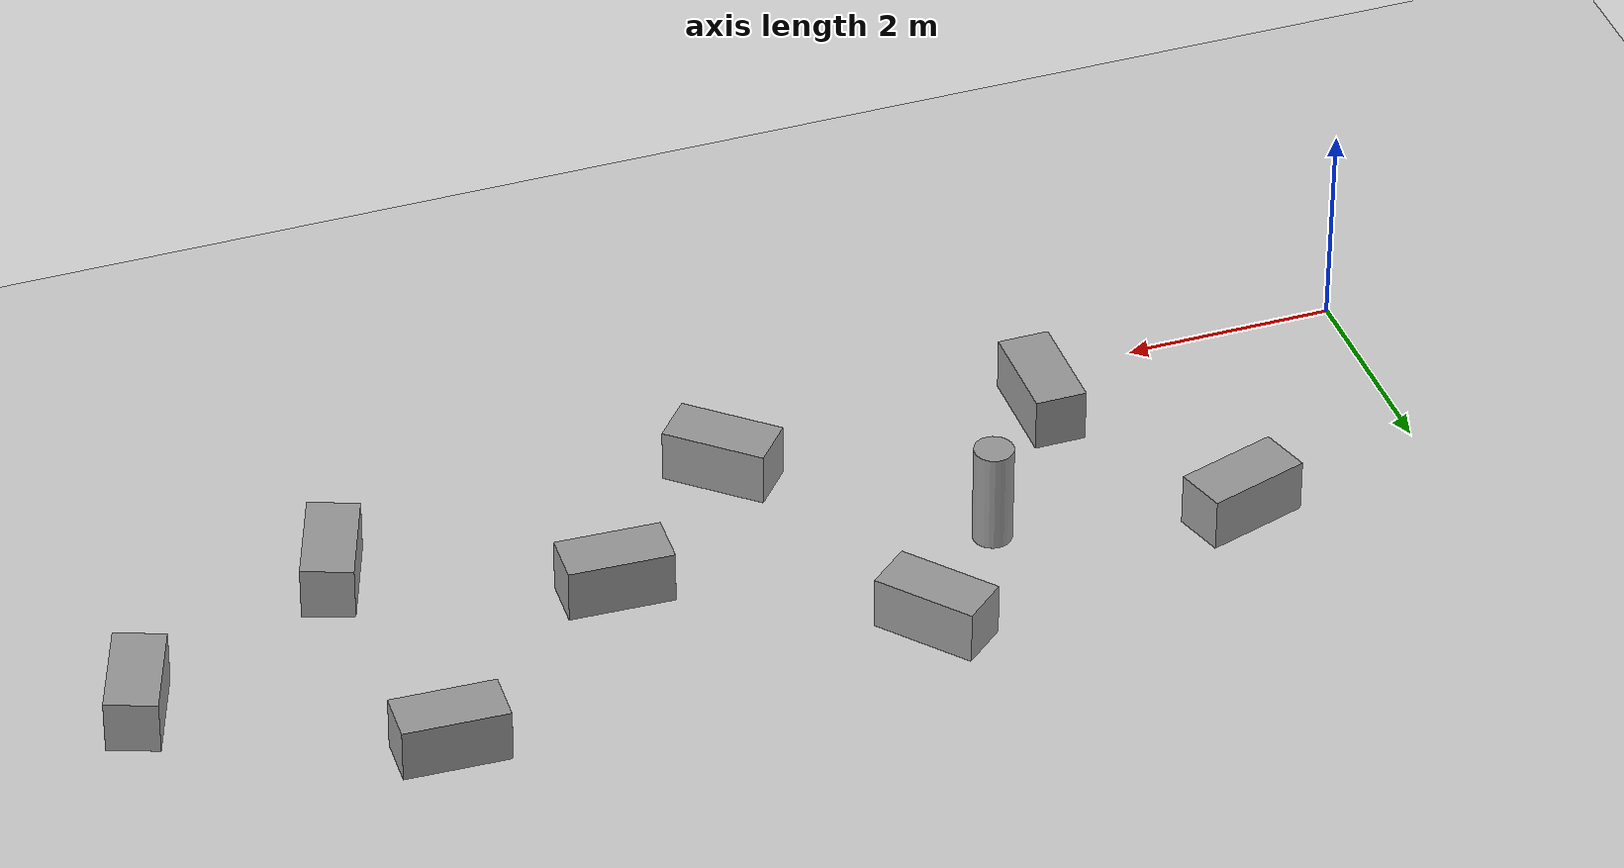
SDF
<sdf version="1.6">
 <world name="default">
  <light name="sun" type="directional">
   <pose>0 0 10 0 -0 0</pose>
   <diffuse>0.8 0.8 0.8 1</diffuse>
   <specular>0.2 0.2 0.2 1</specular>
   <attenuation>
    <range>1000</range>
    <constant>0.9</constant>
    <linear>0.01</linear>
    <quadratic>0.001</quadratic>
   </attenuation>
   <direction>-0.5 0.1 -0.9</direction>
  </light>
  <model name="ground_plane">
   <static>1</static>
   <link name="link">
    <collision name="collision">
     <geometry><plane><normal>0 0 1</normal><size>100 100</size></plane></geometry>
     <surface><friction><ode><mu>100</mu><mu2>50</mu2></ode></friction></surface>
    </collision>
    <visual name="visual">
     <cast_shadows>0</cast_shadows>
     <geometry><plane><normal>0 0 1</normal><size>100 100</size></plane></geometry>
     <material>
      <script><uri>file://media/materials/scripts/gazebo.material</uri><name>Gazebo/Grey</name></script>
     </material>
    </visual>
   </link>
  </model>
  <gravity>0 0 -9.8</gravity>
  <magnetic_field>6e-06 2.3e-05 -4.2e-05</magnetic_field>
  <atmosphere type="adiabatic"/>
  <physics name="default_physics" default="0" type="ode">
   <max_step_size>0.001</max_step_size>
   <real_time_factor>1</real_time_factor>
   <real_time_update_rate>1000</real_time_update_rate>
  </physics>
  <scene><ambient>0.4 0.4 0.4 1</ambient><background>0.7 0.7 0.7 1</background><shadows>1</shadows></scene>
  <spherical_coordinates>
   <surface_model>EARTH_WGS84</surface_model>
   <latitude_deg>0</latitude_deg>
   <longitude_deg>0</longitude_deg>
   <elevation>0</elevation>
   <heading_deg>0</heading_deg>
  </spherical_coordinates>
  <model name="unit_box">
   <pose>3.10766 0.564853 0.25945 0 -0 0</pose>
   <link name="link">
    <inertial>
     <mass>1</mass>
     <inertia>
      <ixx>0.166667</ixx>
      <ixy>0</ixy>
      <ixz>0</ixz>
      <iyy>0.166667</iyy>
      <iyz>0</iyz>
      <izz>0.166667</izz>
     </inertia>
    </inertial>
    <collision name="collision"><geometry><box><size>0.491146 1 0.518899</size></box></geometry></collision>
    <visual name="visual">
     <geometry><box><size>0.491146 1 0.518899</size></box></geometry>
     <material>
      <script><name>Gazebo/Grey</name><uri>file://media/materials/scripts/gazebo.material</uri></script>
     </material>
    </visual>
   </link>
  </model>
  <model name="unit_box_clone">
   <pose>1.92866 2.60505 0.25945 0 0 -1.26885</pose>
   <link name="link">
    <inertial>
     <mass>1</mass>
     <inertia>
      <ixx>0.166667</ixx>
      <ixy>0</ixy>
      <ixz>0</ixz>
      <iyy>0.166667</iyy>
      <iyz>0</iyz>
      <izz>0.166667</izz>
     </inertia>
    </inertial>
    <collision name="collision"><geometry><box><size>0.491146 1 0.5189</size></box></geometry></collision>
    <visual name="visual">
     <geometry><box><size>0.491146 1 0.5189</size></box></geometry>
     <material>
      <script><name>Gazebo/Grey</name><uri>file://media/materials/scripts/gazebo.material</uri></script>
     </material>
    </visual>
   </link>
  </model>
  <model name="unit_box_clone_0">
   <pose>5.12697 3.23307 0.25945 0 -0 0.702334</pose>
   <link name="link">
    <inertial>
     <mass>1</mass>
     <inertia>
      <ixx>0.166667</ixx>
      <ixy>0</ixy>
      <ixz>0</ixz>
      <iyy>0.166667</iyy>
      <iyz>0</iyz>
      <izz>0.166667</izz>
     </inertia>
    </inertial>
    <collision name="collision"><geometry><box><size>0.491146 1 0.5189</size></box></geometry></collision>
    <visual name="visual">
     <geometry><box><size>0.491146 1 0.5189</size></box></geometry>
     <material>
      <script><name>Gazebo/Grey</name><uri>file://media/materials/scripts/gazebo.material</uri></script>
     </material>
    </visual>
   </link>
  </model>
  <model name="unit_box_clone_0_clone">
   <pose>6.21204 0.496408 0.25945 0 -0 0.860732</pose>
   <link name="link">
    <inertial>
     <mass>1</mass>
     <inertia>
      <ixx>0.166667</ixx>
      <ixy>0</ixy>
      <ixz>0</ixz>
      <iyy>0.166667</iyy>
      <iyz>0</iyz>
      <izz>0.166667</izz>
     </inertia>
    </inertial>
    <collision name="collision"><geometry><box><size>0.491146 1 0.5189</size></box></geometry></collision>
    <visual name="visual">
     <geometry><box><size>0.491146 1 0.5189</size></box></geometry>
     <material>
      <script><name>Gazebo/Grey</name><uri>file://media/materials/scripts/gazebo.material</uri></script>
     </material>
    </visual>
   </link>
  </model>
  <model name="unit_box_clone_0_clone_0">
   <pose>7.69056 1.81375 0.25945 0 -0 1.52955</pose>
   <link name="link">
    <inertial>
     <mass>1</mass>
     <inertia>
      <ixx>0.166667</ixx>
      <ixy>0</ixy>
      <ixz>0</ixz>
      <iyy>0.166667</iyy>
      <iyz>0</iyz>
      <izz>0.166667</izz>
     </inertia>
    </inertial>
    <collision name="collision"><geometry><box><size>0.491146 1 0.5189</size></box></geometry></collision>
    <visual name="visual">
     <geometry><box><size>0.491146 1 0.5189</size></box></geometry>
     <material>
      <script><name>Gazebo/Grey</name><uri>file://media/materials/scripts/gazebo.material</uri></script>
     </material>
    </visual>
   </link>
  </model>
  <model name="unit_cylinder">
   <pose>4.18333 2.14535 0.5 0 -0 0</pose>
   <link name="link">
    <inertial>
     <mass>1</mass>
     <inertia><ixx>0.145833</ixx><ixy>0</ixy><ixz>0</ixz><iyy>0.145833</iyy><iyz>0</iyz><izz>0.125</izz></inertia>
    </inertial>
    <collision name="collision">
     <geometry><cylinder><radius>0.186434</radius><length>1</length></cylinder></geometry>
    </collision>
    <visual name="visual">
     <geometry><cylinder><radius>0.186434</radius><length>1</length></cylinder></geometry>
     <material>
      <script><name>Gazebo/Grey</name><uri>file://media/materials/scripts/gazebo.material</uri></script>
     </material>
    </visual>
   </link>
  </model>
  <model name="unit_box_clone_0_clone_0_clone">
   <pose>10.055 0.814569 0.25945 0 -0 2.78901</pose>
   <link name="link">
    <inertial>
     <mass>1</mass>
     <inertia>
      <ixx>0.166667</ixx>
      <ixy>0</ixy>
      <ixz>0</ixz>
      <iyy>0.166667</iyy>
      <iyz>0</iyz>
      <izz>0.166667</izz>
     </inertia>
    </inertial>
    <collision name="collision"><geometry><box><size>0.491146 1 0.5189</size></box></geometry></collision>
    <visual name="visual">
     <geometry><box><size>0.491146 1 0.5189</size></box></geometry>
     <material>
      <script><name>Gazebo/Grey</name><uri>file://media/materials/scripts/gazebo.material</uri></script>
     </material>
    </visual>
   </link>
  </model>
  <model name="unit_box_clone_0_clone_0_clone_0">
   <pose>9.74947 3.44136 0.25945 0 -0 1.52955</pose>
   <link name="link">
    <inertial>
     <mass>1</mass>
     <inertia>
      <ixx>0.166667</ixx>
      <ixy>0</ixy>
      <ixz>0</ixz>
      <iyy>0.166667</iyy>
      <iyz>0</iyz>
      <izz>0.166667</izz>
     </inertia>
    </inertial>
    <collision name="collision"><geometry><box><size>0.491146 1 0.5189</size></box></geometry></collision>
    <visual name="visual">
     <geometry><box><size>0.491146 1 0.5189</size></box></geometry>
     <material>
      <script><name>Gazebo/Grey</name><uri>file://media/materials/scripts/gazebo.material</uri></script>
     </material>
    </visual>
   </link>
  </model>
  <model name="unit_box_clone_0_clone_0_clone_clone">
   <pose>12.2132 2.03874 0.25945 0 -0 2.78901</pose>
   <link name="link">
    <inertial>
     <mass>1</mass>
     <inertia>
      <ixx>0.166667</ixx>
      <ixy>0</ixy>
      <ixz>0</ixz>
      <iyy>0.166667</iyy>
      <iyz>0</iyz>
      <izz>0.166667</izz>
     </inertia>
    </inertial>
    <collision name="collision"><geometry><box><size>0.491146 1 0.5189</size></box></geometry></collision>
    <visual name="visual">
     <geometry><box><size>0.491146 1 0.5189</size></box></geometry>
     <material>
      <script><name>Gazebo/Grey</name><uri>file://media/materials/scripts/gazebo.material</uri></script>
     </material>
    </visual>
   </link>
  </model>
 </world>
</sdf>
